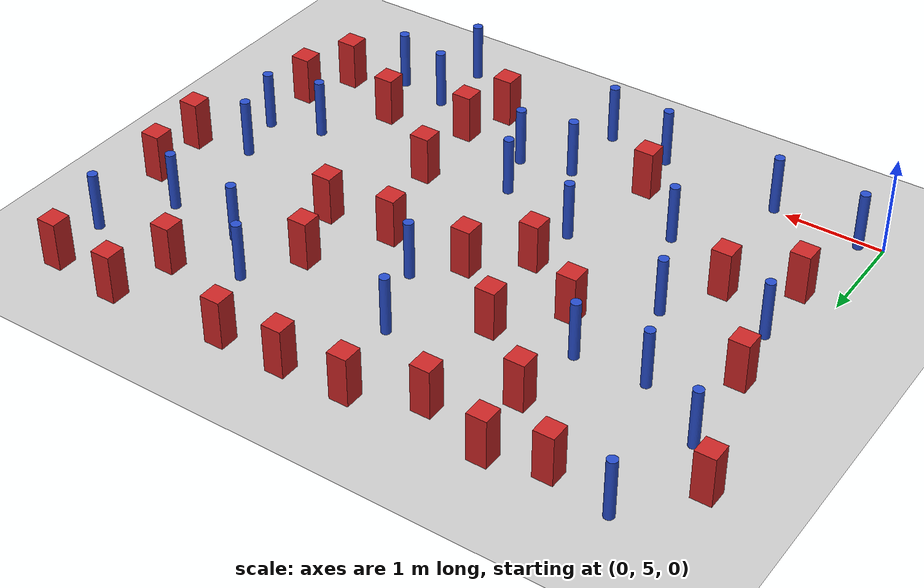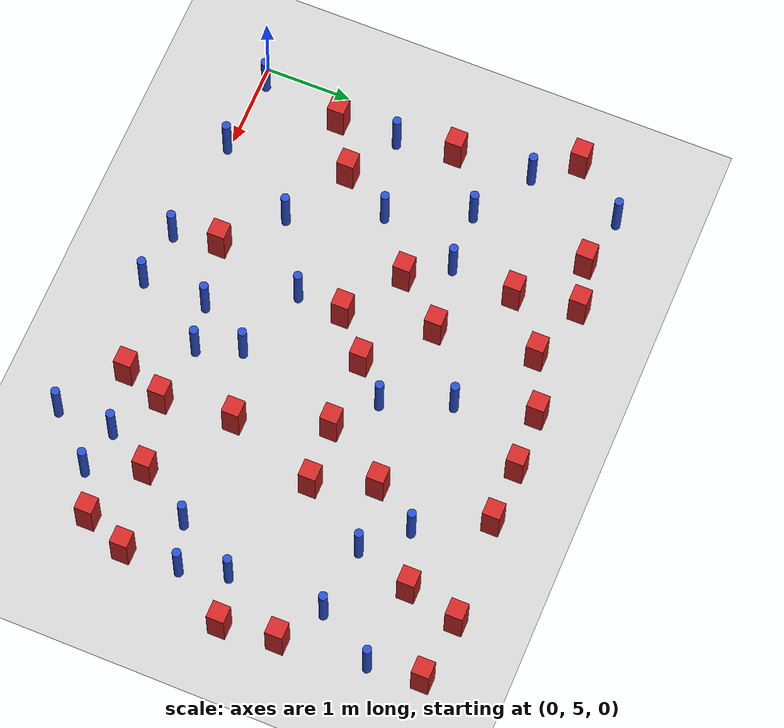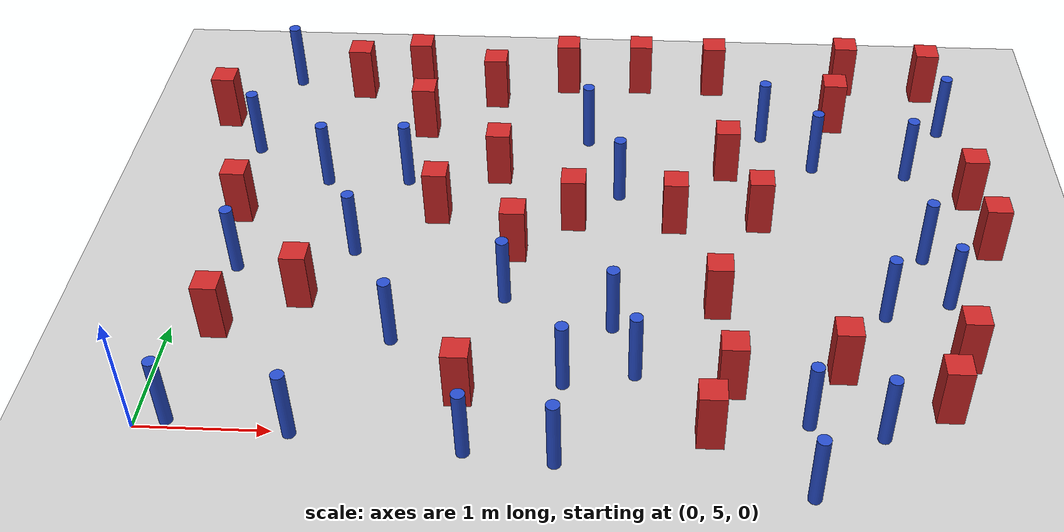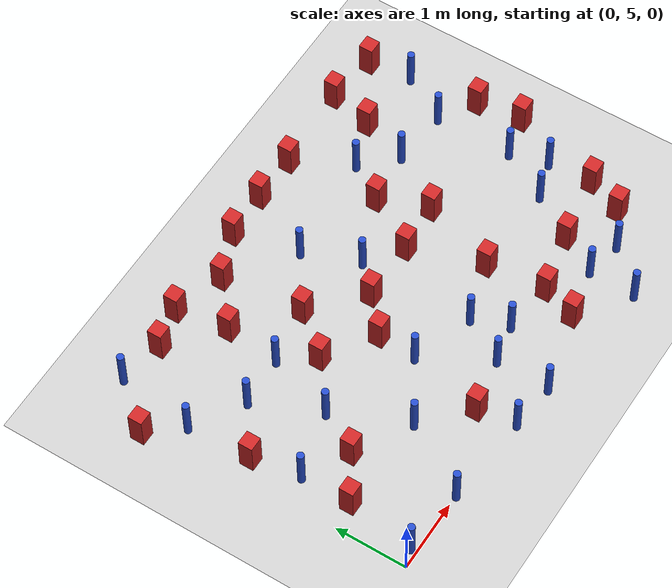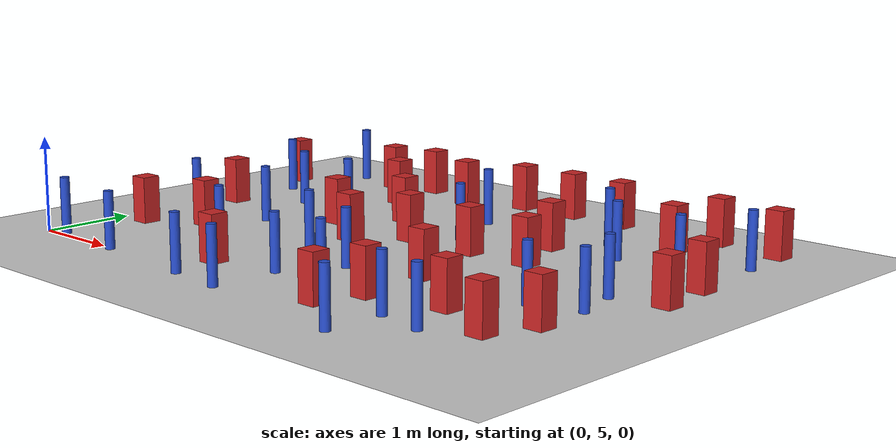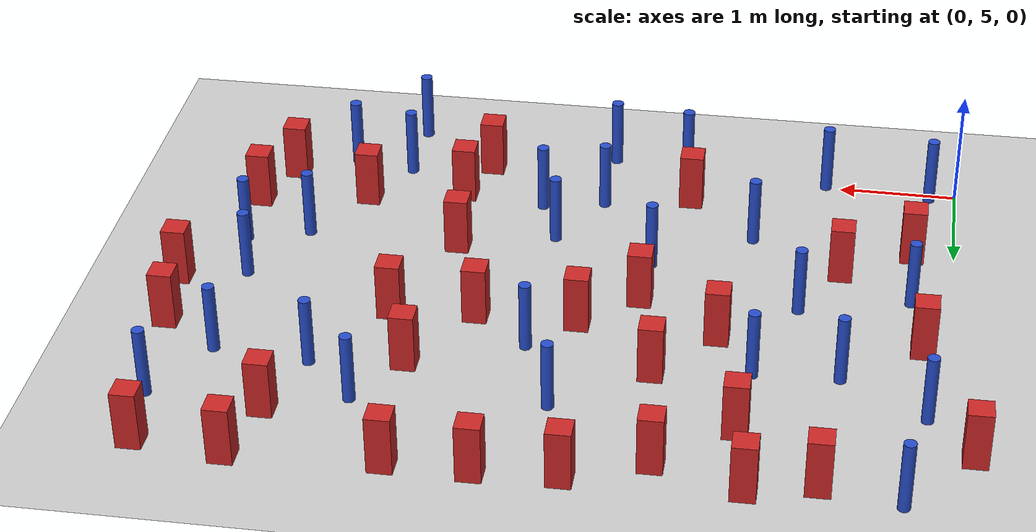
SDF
<sdf version="1.6">
 <world name="default">
  <model name="ground_plane">
   <static>1</static>
   <link name="link">
    <collision name="collision">
     <geometry><plane><normal>0 0 1</normal><size>100 100</size></plane></geometry>
     <surface><friction><ode><mu>100</mu><mu2>50</mu2></ode></friction></surface>
    </collision>
    <visual name="visual">
     <cast_shadows>0</cast_shadows>
     <geometry><plane><normal>0 0 1</normal><size>100 100</size></plane></geometry>
     <material>
      <ambient>1.0 1.0 1.0 1.0</ambient>
      <diffuse>0.8 0.8 0.8 1.0</diffuse>
      <specular>0.01 0.01 0.01 1.000000</specular>
     </material>
    </visual>
   </link>
  </model>
  <model name="square_post_obstacle2">
   <static>true</static>
   <pose>1.88020611518 7.4290270378 8.22691968438e-08 7.2212513382e-06 -7.54495500217e-07 2.29674213826e-05</pose>
   <link name="link">
    <pose>0 0 0.25 0 -0 0</pose>
    <inertial>
     <mass>100</mass>
     <inertia>
      <ixx>0.166667</ixx>
      <ixy>0</ixy>
      <ixz>0</ixz>
      <iyy>0.166667</iyy>
      <iyz>0</iyz>
      <izz>0.166667</izz>
     </inertia>
    </inertial>
    <collision name="collision"><geometry><box><size>.2 .2 .5</size></box></geometry></collision>
    <visual name="visual">
     <geometry><box><size>.2 .2 .5</size></box></geometry>
     <material>
      <script><name>Gazebo/Red</name><uri>file://media/materials/scripts/gazebo.material</uri></script>
     </material>
    </visual>
   </link>
  </model>
  <model name="square_post_obstacle10">
   <static>true</static>
   <pose>4.29482874448 8.11141196569 8.22691968438e-08 7.22125133819e-06 -7.54495500217e-07 2.29674213826e-05</pose>
   <link name="link">
    <pose>0 0 0.25 0 -0 0</pose>
    <inertial>
     <mass>100</mass>
     <inertia>
      <ixx>0.166667</ixx>
      <ixy>0</ixy>
      <ixz>0</ixz>
      <iyy>0.166667</iyy>
      <iyz>0</iyz>
      <izz>0.166667</izz>
     </inertia>
    </inertial>
    <collision name="collision"><geometry><box><size>.2 .2 .5</size></box></geometry></collision>
    <visual name="visual">
     <geometry><box><size>.2 .2 .5</size></box></geometry>
     <material>
      <script><name>Gazebo/Red</name><uri>file://media/materials/scripts/gazebo.material</uri></script>
     </material>
    </visual>
   </link>
  </model>
  <model name="square_post_obstacle11">
   <static>true</static>
   <pose>3.01679938763 7.38728642145 8.22691968438e-08 7.2212513382e-06 -7.54495500217e-07 2.29674213826e-05</pose>
   <link name="link">
    <pose>0 0 0.25 0 -0 0</pose>
    <inertial>
     <mass>100</mass>
     <inertia>
      <ixx>0.166667</ixx>
      <ixy>0</ixy>
      <ixz>0</ixz>
      <iyy>0.166667</iyy>
      <iyz>0</iyz>
      <izz>0.166667</izz>
     </inertia>
    </inertial>
    <collision name="collision"><geometry><box><size>.2 .2 .5</size></box></geometry></collision>
    <visual name="visual">
     <geometry><box><size>.2 .2 .5</size></box></geometry>
     <material>
      <script><name>Gazebo/Red</name><uri>file://media/materials/scripts/gazebo.material</uri></script>
     </material>
    </visual>
   </link>
  </model>
  <model name="pole_obstacle17">
   <static>true</static>
   <pose>5.84731982351 8.12942349117 2.88873142074e-08 -9.9053668967e-09 4.60219948993e-07 -1.20965994957e-07</pose>
   <link name="link">
    <pose>0 0 0.3 0 -0 0</pose>
    <inertial>
     <mass>1</mass>
     <inertia><ixx>0.145833</ixx><ixy>0</ixy><ixz>0</ixz><iyy>0.145833</iyy><iyz>0</iyz><izz>0.125</izz></inertia>
    </inertial>
    <collision name="collision">
     <geometry><cylinder><radius>0.05</radius><length>.6</length></cylinder></geometry>
    </collision>
    <visual name="visual">
     <geometry><cylinder><radius>0.05</radius><length>.6</length></cylinder></geometry>
     <material>
      <script><name>Gazebo/Blue</name><uri>file://media/materials/scripts/gazebo.material</uri></script>
     </material>
    </visual>
   </link>
  </model>
  <model name="square_post_obstacle14">
   <static>true</static>
   <pose>4.54750543136 7.43234947664 8.22691968438e-08 7.2212513382e-06 -7.54495500217e-07 2.29674213826e-05</pose>
   <link name="link">
    <pose>0 0 0.25 0 -0 0</pose>
    <inertial>
     <mass>100</mass>
     <inertia>
      <ixx>0.166667</ixx>
      <ixy>0</ixy>
      <ixz>0</ixz>
      <iyy>0.166667</iyy>
      <iyz>0</iyz>
      <izz>0.166667</izz>
     </inertia>
    </inertial>
    <collision name="collision"><geometry><box><size>.2 .2 .5</size></box></geometry></collision>
    <visual name="visual">
     <geometry><box><size>.2 .2 .5</size></box></geometry>
     <material>
      <script><name>Gazebo/Red</name><uri>file://media/materials/scripts/gazebo.material</uri></script>
     </material>
    </visual>
   </link>
  </model>
  <model name="pole_obstacle19">
   <static>true</static>
   <pose>6.21827679734 8.78030619588 2.88873142074e-08 -9.9053668967e-09 4.60219948993e-07 -1.20965994957e-07</pose>
   <link name="link">
    <pose>0 0 0.3 0 -0 0</pose>
    <inertial>
     <mass>1</mass>
     <inertia><ixx>0.145833</ixx><ixy>0</ixy><ixz>0</ixz><iyy>0.145833</iyy><iyz>0</iyz><izz>0.125</izz></inertia>
    </inertial>
    <collision name="collision">
     <geometry><cylinder><radius>0.05</radius><length>.6</length></cylinder></geometry>
    </collision>
    <visual name="visual">
     <geometry><cylinder><radius>0.05</radius><length>.6</length></cylinder></geometry>
     <material>
      <script><name>Gazebo/Blue</name><uri>file://media/materials/scripts/gazebo.material</uri></script>
     </material>
    </visual>
   </link>
  </model>
  <model name="pole_obstacle26">
   <static>true</static>
   <pose>4.80718190392 5.22176191337 2.88873142074e-08 -9.90536690842e-09 4.60219948965e-07 -1.20965994976e-07</pose>
   <link name="link">
    <pose>0 0 0.3 0 -0 0</pose>
    <inertial>
     <mass>1</mass>
     <inertia><ixx>0.145833</ixx><ixy>0</ixy><ixz>0</ixz><iyy>0.145833</iyy><iyz>0</iyz><izz>0.125</izz></inertia>
    </inertial>
    <collision name="collision">
     <geometry><cylinder><radius>0.05</radius><length>.6</length></cylinder></geometry>
    </collision>
    <visual name="visual">
     <geometry><cylinder><radius>0.05</radius><length>.6</length></cylinder></geometry>
     <material>
      <script><name>Gazebo/Blue</name><uri>file://media/materials/scripts/gazebo.material</uri></script>
     </material>
    </visual>
   </link>
  </model>
  <model name="pole_obstacle27">
   <static>true</static>
   <pose>0.871722174101 7.84950195474 2.88873142074e-08 -9.90536689661e-09 4.60219948993e-07 -1.20965994957e-07</pose>
   <link name="link">
    <pose>0 0 0.3 0 -0 0</pose>
    <inertial>
     <mass>1</mass>
     <inertia><ixx>0.145833</ixx><ixy>0</ixy><ixz>0</ixz><iyy>0.145833</iyy><iyz>0</iyz><izz>0.125</izz></inertia>
    </inertial>
    <collision name="collision">
     <geometry><cylinder><radius>0.05</radius><length>.6</length></cylinder></geometry>
    </collision>
    <visual name="visual">
     <geometry><cylinder><radius>0.05</radius><length>.6</length></cylinder></geometry>
     <material>
      <script><name>Gazebo/Blue</name><uri>file://media/materials/scripts/gazebo.material</uri></script>
     </material>
    </visual>
   </link>
  </model>
  <model name="pole_obstacle28">
   <static>true</static>
   <pose>3.09201147734 8.510328675 2.88873142074e-08 -9.90536692318e-09 4.6021994893e-07 -1.20965994988e-07</pose>
   <link name="link">
    <pose>0 0 0.3 0 -0 0</pose>
    <inertial>
     <mass>1</mass>
     <inertia><ixx>0.145833</ixx><ixy>0</ixy><ixz>0</ixz><iyy>0.145833</iyy><iyz>0</iyz><izz>0.125</izz></inertia>
    </inertial>
    <collision name="collision">
     <geometry><cylinder><radius>0.05</radius><length>.6</length></cylinder></geometry>
    </collision>
    <visual name="visual">
     <geometry><cylinder><radius>0.05</radius><length>.6</length></cylinder></geometry>
     <material>
      <script><name>Gazebo/Blue</name><uri>file://media/materials/scripts/gazebo.material</uri></script>
     </material>
    </visual>
   </link>
  </model>
  <model name="square_post_obstacle19">
   <static>true</static>
   <pose>1.63069952829 8.62874242195 8.22691968438e-08 7.22125133819e-06 -7.54495500217e-07 2.29674213826e-05</pose>
   <link name="link">
    <pose>0 0 0.25 0 -0 0</pose>
    <inertial>
     <mass>100</mass>
     <inertia>
      <ixx>0.166667</ixx>
      <ixy>0</ixy>
      <ixz>0</ixz>
      <iyy>0.166667</iyy>
      <iyz>0</iyz>
      <izz>0.166667</izz>
     </inertia>
    </inertial>
    <collision name="collision"><geometry><box><size>.2 .2 .5</size></box></geometry></collision>
    <visual name="visual">
     <geometry><box><size>.2 .2 .5</size></box></geometry>
     <material>
      <script><name>Gazebo/Red</name><uri>file://media/materials/scripts/gazebo.material</uri></script>
     </material>
    </visual>
   </link>
  </model>
  <model name="pole_obstacle33">
   <static>true</static>
   <pose>3.03195359062 5.54195179076 2.88873142074e-08 -9.90536689859e-09 4.60219948989e-07 -1.20965994961e-07</pose>
   <link name="link">
    <pose>0 0 0.3 0 -0 0</pose>
    <inertial>
     <mass>1</mass>
     <inertia><ixx>0.145833</ixx><ixy>0</ixy><ixz>0</ixz><iyy>0.145833</iyy><iyz>0</iyz><izz>0.125</izz></inertia>
    </inertial>
    <collision name="collision">
     <geometry><cylinder><radius>0.05</radius><length>.6</length></cylinder></geometry>
    </collision>
    <visual name="visual">
     <geometry><cylinder><radius>0.05</radius><length>.6</length></cylinder></geometry>
     <material>
      <script><name>Gazebo/Blue</name><uri>file://media/materials/scripts/gazebo.material</uri></script>
     </material>
    </visual>
   </link>
  </model>
  <model name="pole_obstacle34">
   <static>true</static>
   <pose>3.38530118847 7.7525392408 2.88873142074e-08 -9.90536689859e-09 4.60219948989e-07 -1.20965994961e-07</pose>
   <link name="link">
    <pose>0 0 0.3 0 -0 0</pose>
    <inertial>
     <mass>1</mass>
     <inertia><ixx>0.145833</ixx><ixy>0</ixy><ixz>0</ixz><iyy>0.145833</iyy><iyz>0</iyz><izz>0.125</izz></inertia>
    </inertial>
    <collision name="collision">
     <geometry><cylinder><radius>0.05</radius><length>.6</length></cylinder></geometry>
    </collision>
    <visual name="visual">
     <geometry><cylinder><radius>0.05</radius><length>.6</length></cylinder></geometry>
     <material>
      <script><name>Gazebo/Blue</name><uri>file://media/materials/scripts/gazebo.material</uri></script>
     </material>
    </visual>
   </link>
  </model>
  <model name="pole_obstacle36">
   <static>true</static>
   <pose>3.55911671787 5.6524916783 2.88873142074e-08 -9.90536689859e-09 4.60219948989e-07 -1.20965994961e-07</pose>
   <link name="link">
    <pose>0 0 0.3 0 -0 0</pose>
    <inertial>
     <mass>1</mass>
     <inertia><ixx>0.145833</ixx><ixy>0</ixy><ixz>0</ixz><iyy>0.145833</iyy><iyz>0</iyz><izz>0.125</izz></inertia>
    </inertial>
    <collision name="collision">
     <geometry><cylinder><radius>0.05</radius><length>.6</length></cylinder></geometry>
    </collision>
    <visual name="visual">
     <geometry><cylinder><radius>0.05</radius><length>.6</length></cylinder></geometry>
     <material>
      <script><name>Gazebo/Blue</name><uri>file://media/materials/scripts/gazebo.material</uri></script>
     </material>
    </visual>
   </link>
  </model>
  <model name="pole_obstacle38">
   <static>true</static>
   <pose>0.345372411378 6.71294330075 2.88873142074e-08 -9.90536689683e-09 4.60219948993e-07 -1.20965994957e-07</pose>
   <link name="link">
    <pose>0 0 0.3 0 -0 0</pose>
    <inertial>
     <mass>1</mass>
     <inertia><ixx>0.145833</ixx><ixy>0</ixy><ixz>0</ixz><iyy>0.145833</iyy><iyz>0</iyz><izz>0.125</izz></inertia>
    </inertial>
    <collision name="collision">
     <geometry><cylinder><radius>0.05</radius><length>.6</length></cylinder></geometry>
    </collision>
    <visual name="visual">
     <geometry><cylinder><radius>0.05</radius><length>.6</length></cylinder></geometry>
     <material>
      <script><name>Gazebo/Blue</name><uri>file://media/materials/scripts/gazebo.material</uri></script>
     </material>
    </visual>
   </link>
  </model>
  <model name="pole_obstacle40">
   <static>true</static>
   <pose>0.338555735397 9.34684785285 2.88873142074e-08 -9.90536691079e-09 4.6021994896e-07 -1.2096599498e-07</pose>
   <link name="link">
    <pose>0 0 0.3 0 -0 0</pose>
    <inertial>
     <mass>1</mass>
     <inertia><ixx>0.145833</ixx><ixy>0</ixy><ixz>0</ixz><iyy>0.145833</iyy><iyz>0</iyz><izz>0.125</izz></inertia>
    </inertial>
    <collision name="collision">
     <geometry><cylinder><radius>0.05</radius><length>.6</length></cylinder></geometry>
    </collision>
    <visual name="visual">
     <geometry><cylinder><radius>0.05</radius><length>.6</length></cylinder></geometry>
     <material>
      <script><name>Gazebo/Blue</name><uri>file://media/materials/scripts/gazebo.material</uri></script>
     </material>
    </visual>
   </link>
  </model>
  <model name="square_post_obstacle32">
   <static>true</static>
   <pose>5.26134293332 8.86019405828 8.22691968438e-08 7.22125133819e-06 -7.54495500217e-07 2.29674213826e-05</pose>
   <link name="link">
    <pose>0 0 0.25 0 -0 0</pose>
    <inertial>
     <mass>100</mass>
     <inertia>
      <ixx>0.166667</ixx>
      <ixy>0</ixy>
      <ixz>0</ixz>
      <iyy>0.166667</iyy>
      <iyz>0</iyz>
      <izz>0.166667</izz>
     </inertia>
    </inertial>
    <collision name="collision"><geometry><box><size>.2 .2 .5</size></box></geometry></collision>
    <visual name="visual">
     <geometry><box><size>.2 .2 .5</size></box></geometry>
     <material>
      <script><name>Gazebo/Red</name><uri>file://media/materials/scripts/gazebo.material</uri></script>
     </material>
    </visual>
   </link>
  </model>
  <model name="square_post_obstacle43">
   <static>true</static>
   <pose>4.18162429365 6.3829640397 8.22691968438e-08 7.2212513382e-06 -7.54495500217e-07 2.29674213826e-05</pose>
   <link name="link">
    <pose>0 0 0.25 0 -0 0</pose>
    <inertial>
     <mass>100</mass>
     <inertia>
      <ixx>0.166667</ixx>
      <ixy>0</ixy>
      <ixz>0</ixz>
      <iyy>0.166667</iyy>
      <iyz>0</iyz>
      <izz>0.166667</izz>
     </inertia>
    </inertial>
    <collision name="collision"><geometry><box><size>.2 .2 .5</size></box></geometry></collision>
    <visual name="visual">
     <geometry><box><size>.2 .2 .5</size></box></geometry>
     <material>
      <script><name>Gazebo/Red</name><uri>file://media/materials/scripts/gazebo.material</uri></script>
     </material>
    </visual>
   </link>
  </model>
  <model name="pole_obstacle65">
   <static>true</static>
   <pose>1.25671319583 6.9429597633 2.88873142074e-08 -9.90536689852e-09 4.60219948989e-07 -1.2096599496e-07</pose>
   <link name="link">
    <pose>0 0 0.3 0 -0 0</pose>
    <inertial>
     <mass>1</mass>
     <inertia><ixx>0.145833</ixx><ixy>0</ixy><ixz>0</ixz><iyy>0.145833</iyy><iyz>0</iyz><izz>0.125</izz></inertia>
    </inertial>
    <collision name="collision">
     <geometry><cylinder><radius>0.05</radius><length>.6</length></cylinder></geometry>
    </collision>
    <visual name="visual">
     <geometry><cylinder><radius>0.05</radius><length>.6</length></cylinder></geometry>
     <material>
      <script><name>Gazebo/Blue</name><uri>file://media/materials/scripts/gazebo.material</uri></script>
     </material>
    </visual>
   </link>
  </model>
  <model name="pole_obstacle68">
   <static>true</static>
   <pose>1.7041043052 5.93925075666 2.88873142074e-08 -9.90536689852e-09 4.60219948989e-07 -1.2096599496e-07</pose>
   <link name="link">
    <pose>0 0 0.3 0 -0 0</pose>
    <inertial>
     <mass>1</mass>
     <inertia><ixx>0.145833</ixx><ixy>0</ixy><ixz>0</ixz><iyy>0.145833</iyy><iyz>0</iyz><izz>0.125</izz></inertia>
    </inertial>
    <collision name="collision">
     <geometry><cylinder><radius>0.05</radius><length>.6</length></cylinder></geometry>
    </collision>
    <visual name="visual">
     <geometry><cylinder><radius>0.05</radius><length>.6</length></cylinder></geometry>
     <material>
      <script><name>Gazebo/Blue</name><uri>file://media/materials/scripts/gazebo.material</uri></script>
     </material>
    </visual>
   </link>
  </model>
  <model name="square_post_obstacle61">
   <static>true</static>
   <pose>1.51091823263 9.35410405178 8.22691968438e-08 7.22125133819e-06 -7.54495500217e-07 2.29674213826e-05</pose>
   <link name="link">
    <pose>0 0 0.25 0 -0 0</pose>
    <inertial>
     <mass>100</mass>
     <inertia>
      <ixx>0.166667</ixx>
      <ixy>0</ixy>
      <ixz>0</ixz>
      <iyy>0.166667</iyy>
      <iyz>0</iyz>
      <izz>0.166667</izz>
     </inertia>
    </inertial>
    <collision name="collision"><geometry><box><size>.2 .2 .5</size></box></geometry></collision>
    <visual name="visual">
     <geometry><box><size>.2 .2 .5</size></box></geometry>
     <material>
      <script><name>Gazebo/Red</name><uri>file://media/materials/scripts/gazebo.material</uri></script>
     </material>
    </visual>
   </link>
  </model>
  <model name="pole_obstacle75">
   <static>true</static>
   <pose>4.6287977201 8.63436981729 2.88873142074e-08 -9.9053668967e-09 4.60219948993e-07 -1.20965994957e-07</pose>
   <link name="link">
    <pose>0 0 0.3 0 -0 0</pose>
    <inertial>
     <mass>1</mass>
     <inertia><ixx>0.145833</ixx><ixy>0</ixy><ixz>0</ixz><iyy>0.145833</iyy><iyz>0</iyz><izz>0.125</izz></inertia>
    </inertial>
    <collision name="collision">
     <geometry><cylinder><radius>0.05</radius><length>.6</length></cylinder></geometry>
    </collision>
    <visual name="visual">
     <geometry><cylinder><radius>0.05</radius><length>.6</length></cylinder></geometry>
     <material>
      <script><name>Gazebo/Blue</name><uri>file://media/materials/scripts/gazebo.material</uri></script>
     </material>
    </visual>
   </link>
  </model>
  <model name="square_post_obstacle72">
   <static>true</static>
   <pose>5.08679049711 5.73420712113 8.22691968438e-08 7.2212513382e-06 -7.54495500217e-07 2.29674213826e-05</pose>
   <link name="link">
    <pose>0 0 0.25 0 -0 0</pose>
    <inertial>
     <mass>100</mass>
     <inertia>
      <ixx>0.166667</ixx>
      <ixy>0</ixy>
      <ixz>0</ixz>
      <iyy>0.166667</iyy>
      <iyz>0</iyz>
      <izz>0.166667</izz>
     </inertia>
    </inertial>
    <collision name="collision"><geometry><box><size>.2 .2 .5</size></box></geometry></collision>
    <visual name="visual">
     <geometry><box><size>.2 .2 .5</size></box></geometry>
     <material>
      <script><name>Gazebo/Red</name><uri>file://media/materials/scripts/gazebo.material</uri></script>
     </material>
    </visual>
   </link>
  </model>
  <model name="pole_obstacle85">
   <static>true</static>
   <pose>3.37837329261 6.14405832895 2.88873142074e-08 -9.90536689859e-09 4.60219948989e-07 -1.20965994961e-07</pose>
   <link name="link">
    <pose>0 0 0.3 0 -0 0</pose>
    <inertial>
     <mass>1</mass>
     <inertia><ixx>0.145833</ixx><ixy>0</ixy><ixz>0</ixz><iyy>0.145833</iyy><iyz>0</iyz><izz>0.125</izz></inertia>
    </inertial>
    <collision name="collision">
     <geometry><cylinder><radius>0.05</radius><length>.6</length></cylinder></geometry>
    </collision>
    <visual name="visual">
     <geometry><cylinder><radius>0.05</radius><length>.6</length></cylinder></geometry>
     <material>
      <script><name>Gazebo/Blue</name><uri>file://media/materials/scripts/gazebo.material</uri></script>
     </material>
    </visual>
   </link>
  </model>
  <model name="pole_obstacle87">
   <static>true</static>
   <pose>4.79421285368 4.56980662866 2.88873142074e-08 -9.90536690842e-09 4.60219948965e-07 -1.20965994976e-07</pose>
   <link name="link">
    <pose>0 0 0.3 0 -0 0</pose>
    <inertial>
     <mass>1</mass>
     <inertia><ixx>0.145833</ixx><ixy>0</ixy><ixz>0</ixz><iyy>0.145833</iyy><iyz>0</iyz><izz>0.125</izz></inertia>
    </inertial>
    <collision name="collision">
     <geometry><cylinder><radius>0.05</radius><length>.6</length></cylinder></geometry>
    </collision>
    <visual name="visual">
     <geometry><cylinder><radius>0.05</radius><length>.6</length></cylinder></geometry>
     <material>
      <script><name>Gazebo/Blue</name><uri>file://media/materials/scripts/gazebo.material</uri></script>
     </material>
    </visual>
   </link>
  </model>
  <model name="square_post_obstacle79">
   <static>true</static>
   <pose>6.39883494618 7.17023289886 8.22691968438e-08 7.2212513382e-06 -7.54495500217e-07 2.29674213826e-05</pose>
   <link name="link">
    <pose>0 0 0.25 0 -0 0</pose>
    <inertial>
     <mass>100</mass>
     <inertia>
      <ixx>0.166667</ixx>
      <ixy>0</ixy>
      <ixz>0</ixz>
      <iyy>0.166667</iyy>
      <iyz>0</iyz>
      <izz>0.166667</izz>
     </inertia>
    </inertial>
    <collision name="collision"><geometry><box><size>.2 .2 .5</size></box></geometry></collision>
    <visual name="visual">
     <geometry><box><size>.2 .2 .5</size></box></geometry>
     <material>
      <script><name>Gazebo/Red</name><uri>file://media/materials/scripts/gazebo.material</uri></script>
     </material>
    </visual>
   </link>
  </model>
  <model name="square_post_obstacle80">
   <static>true</static>
   <pose>6.32582281031 7.80456345543 8.22691968438e-08 7.2212513382e-06 -7.54495500217e-07 2.29674213826e-05</pose>
   <link name="link">
    <pose>0 0 0.25 0 -0 0</pose>
    <inertial>
     <mass>100</mass>
     <inertia>
      <ixx>0.166667</ixx>
      <ixy>0</ixy>
      <ixz>0</ixz>
      <iyy>0.166667</iyy>
      <iyz>0</iyz>
      <izz>0.166667</izz>
     </inertia>
    </inertial>
    <collision name="collision"><geometry><box><size>.2 .2 .5</size></box></geometry></collision>
    <visual name="visual">
     <geometry><box><size>.2 .2 .5</size></box></geometry>
     <material>
      <script><name>Gazebo/Red</name><uri>file://media/materials/scripts/gazebo.material</uri></script>
     </material>
    </visual>
   </link>
  </model>
  <model name="square_post_obstacle89">
   <static>true</static>
   <pose>6.01735890398 5.88994774195 8.22691968438e-08 7.2212513382e-06 -7.54495500217e-07 2.29674213826e-05</pose>
   <link name="link">
    <pose>0 0 0.25 0 -0 0</pose>
    <inertial>
     <mass>100</mass>
     <inertia>
      <ixx>0.166667</ixx>
      <ixy>0</ixy>
      <ixz>0</ixz>
      <iyy>0.166667</iyy>
      <iyz>0</iyz>
      <izz>0.166667</izz>
     </inertia>
    </inertial>
    <collision name="collision"><geometry><box><size>.2 .2 .5</size></box></geometry></collision>
    <visual name="visual">
     <geometry><box><size>.2 .2 .5</size></box></geometry>
     <material>
      <script><name>Gazebo/Red</name><uri>file://media/materials/scripts/gazebo.material</uri></script>
     </material>
    </visual>
   </link>
  </model>
  <model name="square_post_obstacle90">
   <static>true</static>
   <pose>0.968969788933 9.22281343465 8.22691968438e-08 7.22125133819e-06 -7.54495500217e-07 2.29674213826e-05</pose>
   <link name="link">
    <pose>0 0 0.25 0 -0 0</pose>
    <inertial>
     <mass>100</mass>
     <inertia>
      <ixx>0.166667</ixx>
      <ixy>0</ixy>
      <ixz>0</ixz>
      <iyy>0.166667</iyy>
      <iyz>0</iyz>
      <izz>0.166667</izz>
     </inertia>
    </inertial>
    <collision name="collision"><geometry><box><size>.2 .2 .5</size></box></geometry></collision>
    <visual name="visual">
     <geometry><box><size>.2 .2 .5</size></box></geometry>
     <material>
      <script><name>Gazebo/Red</name><uri>file://media/materials/scripts/gazebo.material</uri></script>
     </material>
    </visual>
   </link>
  </model>
  <model name="pole_obstacle102">
   <static>true</static>
   <pose>0.226496929471 5.07071774801 2.88873142074e-08 -9.90536689491e-09 4.60219948997e-07 -1.20965994955e-07</pose>
   <link name="link">
    <pose>0 0 0.3 0 -0 0</pose>
    <inertial>
     <mass>1</mass>
     <inertia><ixx>0.145833</ixx><ixy>0</ixy><ixz>0</ixz><iyy>0.145833</iyy><iyz>0</iyz><izz>0.125</izz></inertia>
    </inertial>
    <collision name="collision">
     <geometry><cylinder><radius>0.05</radius><length>.6</length></cylinder></geometry>
    </collision>
    <visual name="visual">
     <geometry><cylinder><radius>0.05</radius><length>.6</length></cylinder></geometry>
     <material>
      <script><name>Gazebo/Blue</name><uri>file://media/materials/scripts/gazebo.material</uri></script>
     </material>
    </visual>
   </link>
  </model>
  <model name="pole_obstacle107">
   <static>true</static>
   <pose>2.37489595555 4.86440754764 2.88873142074e-08 -9.90536689859e-09 4.60219948989e-07 -1.20965994961e-07</pose>
   <link name="link">
    <pose>0 0 0.3 0 -0 0</pose>
    <inertial>
     <mass>1</mass>
     <inertia><ixx>0.145833</ixx><ixy>0</ixy><ixz>0</ixz><iyy>0.145833</iyy><iyz>0</iyz><izz>0.125</izz></inertia>
    </inertial>
    <collision name="collision">
     <geometry><cylinder><radius>0.05</radius><length>.6</length></cylinder></geometry>
    </collision>
    <visual name="visual">
     <geometry><cylinder><radius>0.05</radius><length>.6</length></cylinder></geometry>
     <material>
      <script><name>Gazebo/Blue</name><uri>file://media/materials/scripts/gazebo.material</uri></script>
     </material>
    </visual>
   </link>
  </model>
  <model name="square_post_obstacle106">
   <static>true</static>
   <pose>2.28705705804 5.39459746559 8.22691968438e-08 7.2212513382e-06 -7.54495500217e-07 2.29674213826e-05</pose>
   <link name="link">
    <pose>0 0 0.25 0 -0 0</pose>
    <inertial>
     <mass>100</mass>
     <inertia>
      <ixx>0.166667</ixx>
      <ixy>0</ixy>
      <ixz>0</ixz>
      <iyy>0.166667</iyy>
      <iyz>0</iyz>
      <izz>0.166667</izz>
     </inertia>
    </inertial>
    <collision name="collision"><geometry><box><size>.2 .2 .5</size></box></geometry></collision>
    <visual name="visual">
     <geometry><box><size>.2 .2 .5</size></box></geometry>
     <material>
      <script><name>Gazebo/Red</name><uri>file://media/materials/scripts/gazebo.material</uri></script>
     </material>
    </visual>
   </link>
  </model>
  <model name="square_post_obstacle120">
   <static>true</static>
   <pose>4.20551393075 9.40559191897 8.22691968438e-08 7.22125133819e-06 -7.54495500217e-07 2.29674213826e-05</pose>
   <link name="link">
    <pose>0 0 0.25 0 -0 0</pose>
    <inertial>
     <mass>100</mass>
     <inertia>
      <ixx>0.166667</ixx>
      <ixy>0</ixy>
      <ixz>0</ixz>
      <iyy>0.166667</iyy>
      <iyz>0</iyz>
      <izz>0.166667</izz>
     </inertia>
    </inertial>
    <collision name="collision"><geometry><box><size>.2 .2 .5</size></box></geometry></collision>
    <visual name="visual">
     <geometry><box><size>.2 .2 .5</size></box></geometry>
     <material>
      <script><name>Gazebo/Red</name><uri>file://media/materials/scripts/gazebo.material</uri></script>
     </material>
    </visual>
   </link>
  </model>
  <model name="pole_obstacle127">
   <static>true</static>
   <pose>5.47817961581 6.3531723554 2.88873142074e-08 -9.90536690842e-09 4.60219948965e-07 -1.20965994976e-07</pose>
   <link name="link">
    <pose>0 0 0.3 0 -0 0</pose>
    <inertial>
     <mass>1</mass>
     <inertia><ixx>0.145833</ixx><ixy>0</ixy><ixz>0</ixz><iyy>0.145833</iyy><iyz>0</iyz><izz>0.125</izz></inertia>
    </inertial>
    <collision name="collision">
     <geometry><cylinder><radius>0.05</radius><length>.6</length></cylinder></geometry>
    </collision>
    <visual name="visual">
     <geometry><cylinder><radius>0.05</radius><length>.6</length></cylinder></geometry>
     <material>
      <script><name>Gazebo/Blue</name><uri>file://media/materials/scripts/gazebo.material</uri></script>
     </material>
    </visual>
   </link>
  </model>
  <model name="pole_obstacle131">
   <static>true</static>
   <pose>1.56429559158 7.880516411 2.88873142074e-08 -9.90536689852e-09 4.60219948989e-07 -1.2096599496e-07</pose>
   <link name="link">
    <pose>0 0 0.3 0 -0 0</pose>
    <inertial>
     <mass>1</mass>
     <inertia><ixx>0.145833</ixx><ixy>0</ixy><ixz>0</ixz><iyy>0.145833</iyy><iyz>0</iyz><izz>0.125</izz></inertia>
    </inertial>
    <collision name="collision">
     <geometry><cylinder><radius>0.05</radius><length>.6</length></cylinder></geometry>
    </collision>
    <visual name="visual">
     <geometry><cylinder><radius>0.05</radius><length>.6</length></cylinder></geometry>
     <material>
      <script><name>Gazebo/Blue</name><uri>file://media/materials/scripts/gazebo.material</uri></script>
     </material>
    </visual>
   </link>
  </model>
  <model name="square_post_obstacle130">
   <static>true</static>
   <pose>0.354605396178 6.01160404115 8.22691968438e-08 7.22125133819e-06 -7.54495500217e-07 2.29674213826e-05</pose>
   <link name="link">
    <pose>0 0 0.25 0 -0 0</pose>
    <inertial>
     <mass>100</mass>
     <inertia>
      <ixx>0.166667</ixx>
      <ixy>0</ixy>
      <ixz>0</ixz>
      <iyy>0.166667</iyy>
      <iyz>0</iyz>
      <izz>0.166667</izz>
     </inertia>
    </inertial>
    <collision name="collision"><geometry><box><size>.2 .2 .5</size></box></geometry></collision>
    <visual name="visual">
     <geometry><box><size>.2 .2 .5</size></box></geometry>
     <material>
      <script><name>Gazebo/Red</name><uri>file://media/materials/scripts/gazebo.material</uri></script>
     </material>
    </visual>
   </link>
  </model>
  <model name="pole_obstacle138">
   <static>true</static>
   <pose>3.01794356888 4.79457096138 2.88873142074e-08 -9.90536689859e-09 4.60219948989e-07 -1.20965994961e-07</pose>
   <link name="link">
    <pose>0 0 0.3 0 -0 0</pose>
    <inertial>
     <mass>1</mass>
     <inertia><ixx>0.145833</ixx><ixy>0</ixy><ixz>0</ixz><iyy>0.145833</iyy><iyz>0</iyz><izz>0.125</izz></inertia>
    </inertial>
    <collision name="collision">
     <geometry><cylinder><radius>0.05</radius><length>.6</length></cylinder></geometry>
    </collision>
    <visual name="visual">
     <geometry><cylinder><radius>0.05</radius><length>.6</length></cylinder></geometry>
     <material>
      <script><name>Gazebo/Blue</name><uri>file://media/materials/scripts/gazebo.material</uri></script>
     </material>
    </visual>
   </link>
  </model>
  <model name="pole_obstacle140">
   <static>true</static>
   <pose>5.32663790734 5.12329068119 2.88873142074e-08 -9.90536690842e-09 4.60219948965e-07 -1.20965994976e-07</pose>
   <link name="link">
    <pose>0 0 0.3 0 -0 0</pose>
    <inertial>
     <mass>1</mass>
     <inertia><ixx>0.145833</ixx><ixy>0</ixy><ixz>0</ixz><iyy>0.145833</iyy><iyz>0</iyz><izz>0.125</izz></inertia>
    </inertial>
    <collision name="collision">
     <geometry><cylinder><radius>0.05</radius><length>.6</length></cylinder></geometry>
    </collision>
    <visual name="visual">
     <geometry><cylinder><radius>0.05</radius><length>.6</length></cylinder></geometry>
     <material>
      <script><name>Gazebo/Blue</name><uri>file://media/materials/scripts/gazebo.material</uri></script>
     </material>
    </visual>
   </link>
  </model>
  <model name="square_post_obstacle137">
   <static>true</static>
   <pose>4.26370910991 5.55286729627 8.22691968438e-08 7.2212513382e-06 -7.54495500217e-07 2.29674213826e-05</pose>
   <link name="link">
    <pose>0 0 0.25 0 -0 0</pose>
    <inertial>
     <mass>100</mass>
     <inertia>
      <ixx>0.166667</ixx>
      <ixy>0</ixy>
      <ixz>0</ixz>
      <iyy>0.166667</iyy>
      <iyz>0</iyz>
      <izz>0.166667</izz>
     </inertia>
    </inertial>
    <collision name="collision"><geometry><box><size>.2 .2 .5</size></box></geometry></collision>
    <visual name="visual">
     <geometry><box><size>.2 .2 .5</size></box></geometry>
     <material>
      <script><name>Gazebo/Red</name><uri>file://media/materials/scripts/gazebo.material</uri></script>
     </material>
    </visual>
   </link>
  </model>
  <model name="pole_obstacle142">
   <static>true</static>
   <pose>1.13023970192 4.98433044242 2.88873142074e-08 -9.90536689852e-09 4.60219948989e-07 -1.2096599496e-07</pose>
   <link name="link">
    <pose>0 0 0.3 0 -0 0</pose>
    <inertial>
     <mass>1</mass>
     <inertia><ixx>0.145833</ixx><ixy>0</ixy><ixz>0</ixz><iyy>0.145833</iyy><iyz>0</iyz><izz>0.125</izz></inertia>
    </inertial>
    <collision name="collision">
     <geometry><cylinder><radius>0.05</radius><length>.6</length></cylinder></geometry>
    </collision>
    <visual name="visual">
     <geometry><cylinder><radius>0.05</radius><length>.6</length></cylinder></geometry>
     <material>
      <script><name>Gazebo/Blue</name><uri>file://media/materials/scripts/gazebo.material</uri></script>
     </material>
    </visual>
   </link>
  </model>
  <model name="pole_obstacle143">
   <static>true</static>
   <pose>0.185196098066 8.27492616823 2.88873142074e-08 -9.90536690875e-09 4.60219948965e-07 -1.20965994978e-07</pose>
   <link name="link">
    <pose>0 0 0.3 0 -0 0</pose>
    <inertial>
     <mass>1</mass>
     <inertia><ixx>0.145833</ixx><ixy>0</ixy><ixz>0</ixz><iyy>0.145833</iyy><iyz>0</iyz><izz>0.125</izz></inertia>
    </inertial>
    <collision name="collision">
     <geometry><cylinder><radius>0.05</radius><length>.6</length></cylinder></geometry>
    </collision>
    <visual name="visual">
     <geometry><cylinder><radius>0.05</radius><length>.6</length></cylinder></geometry>
     <material>
      <script><name>Gazebo/Blue</name><uri>file://media/materials/scripts/gazebo.material</uri></script>
     </material>
    </visual>
   </link>
  </model>
  <model name="square_post_obstacle146">
   <static>true</static>
   <pose>4.09564553597 5.07621244769 8.22691968438e-08 7.2212513382e-06 -7.54495500217e-07 2.29674213826e-05</pose>
   <link name="link">
    <pose>0 0 0.25 0 -0 0</pose>
    <inertial>
     <mass>100</mass>
     <inertia>
      <ixx>0.166667</ixx>
      <ixy>0</ixy>
      <ixz>0</ixz>
      <iyy>0.166667</iyy>
      <iyz>0</iyz>
      <izz>0.166667</izz>
     </inertia>
    </inertial>
    <collision name="collision"><geometry><box><size>.2 .2 .5</size></box></geometry></collision>
    <visual name="visual">
     <geometry><box><size>.2 .2 .5</size></box></geometry>
     <material>
      <script><name>Gazebo/Red</name><uri>file://media/materials/scripts/gazebo.material</uri></script>
     </material>
    </visual>
   </link>
  </model>
  <model name="square_post_obstacle148">
   <static>true</static>
   <pose>-0.17640628008 8.71971217401 8.22691968438e-08 7.22125133819e-06 -7.54495500217e-07 2.29674213826e-05</pose>
   <link name="link">
    <pose>0 0 0.25 0 -0 0</pose>
    <inertial>
     <mass>100</mass>
     <inertia>
      <ixx>0.166667</ixx>
      <ixy>0</ixy>
      <ixz>0</ixz>
      <iyy>0.166667</iyy>
      <iyz>0</iyz>
      <izz>0.166667</izz>
     </inertia>
    </inertial>
    <collision name="collision"><geometry><box><size>.2 .2 .5</size></box></geometry></collision>
    <visual name="visual">
     <geometry><box><size>.2 .2 .5</size></box></geometry>
     <material>
      <script><name>Gazebo/Red</name><uri>file://media/materials/scripts/gazebo.material</uri></script>
     </material>
    </visual>
   </link>
  </model>
  <model name="square_post_obstacle149">
   <static>true</static>
   <pose>5.81038677562 5.38766887892 8.22691968438e-08 7.2212513382e-06 -7.54495500217e-07 2.29674213826e-05</pose>
   <link name="link">
    <pose>0 0 0.25 0 -0 0</pose>
    <inertial>
     <mass>100</mass>
     <inertia>
      <ixx>0.166667</ixx>
      <ixy>0</ixy>
      <ixz>0</ixz>
      <iyy>0.166667</iyy>
      <iyz>0</iyz>
      <izz>0.166667</izz>
     </inertia>
    </inertial>
    <collision name="collision"><geometry><box><size>.2 .2 .5</size></box></geometry></collision>
    <visual name="visual">
     <geometry><box><size>.2 .2 .5</size></box></geometry>
     <material>
      <script><name>Gazebo/Red</name><uri>file://media/materials/scripts/gazebo.material</uri></script>
     </material>
    </visual>
   </link>
  </model>
  <model name="pole_obstacle170">
   <static>true</static>
   <pose>2.52456821254 6.43744557983 2.88873142074e-08 -9.90536689859e-09 4.60219948989e-07 -1.20965994961e-07</pose>
   <link name="link">
    <pose>0 0 0.3 0 -0 0</pose>
    <inertial>
     <mass>1</mass>
     <inertia><ixx>0.145833</ixx><ixy>0</ixy><ixz>0</ixz><iyy>0.145833</iyy><iyz>0</iyz><izz>0.125</izz></inertia>
    </inertial>
    <collision name="collision">
     <geometry><cylinder><radius>0.05</radius><length>.6</length></cylinder></geometry>
    </collision>
    <visual name="visual">
     <geometry><cylinder><radius>0.05</radius><length>.6</length></cylinder></geometry>
     <material>
      <script><name>Gazebo/Blue</name><uri>file://media/materials/scripts/gazebo.material</uri></script>
     </material>
    </visual>
   </link>
  </model>
  <model name="square_post_obstacle174">
   <static>true</static>
   <pose>0.235048989431 7.38083653092 8.22691968438e-08 7.2212513382e-06 -7.54495500217e-07 2.29674213826e-05</pose>
   <link name="link">
    <pose>0 0 0.25 0 -0 0</pose>
    <inertial>
     <mass>100</mass>
     <inertia>
      <ixx>0.166667</ixx>
      <ixy>0</ixy>
      <ixz>0</ixz>
      <iyy>0.166667</iyy>
      <iyz>0</iyz>
      <izz>0.166667</izz>
     </inertia>
    </inertial>
    <collision name="collision"><geometry><box><size>.2 .2 .5</size></box></geometry></collision>
    <visual name="visual">
     <geometry><box><size>.2 .2 .5</size></box></geometry>
     <material>
      <script><name>Gazebo/Red</name><uri>file://media/materials/scripts/gazebo.material</uri></script>
     </material>
    </visual>
   </link>
  </model>
  <model name="pole_obstacle177">
   <static>true</static>
   <pose>5.8529108217 7.03887112302 2.88873142074e-08 -9.90536690842e-09 4.60219948965e-07 -1.20965994976e-07</pose>
   <link name="link">
    <pose>0 0 0.3 0 -0 0</pose>
    <inertial>
     <mass>1</mass>
     <inertia><ixx>0.145833</ixx><ixy>0</ixy><ixz>0</ixz><iyy>0.145833</iyy><iyz>0</iyz><izz>0.125</izz></inertia>
    </inertial>
    <collision name="collision">
     <geometry><cylinder><radius>0.05</radius><length>.6</length></cylinder></geometry>
    </collision>
    <visual name="visual">
     <geometry><cylinder><radius>0.05</radius><length>.6</length></cylinder></geometry>
     <material>
      <script><name>Gazebo/Blue</name><uri>file://media/materials/scripts/gazebo.material</uri></script>
     </material>
    </visual>
   </link>
  </model>
  <model name="square_post_obstacle176">
   <static>true</static>
   <pose>3.53489156459 9.41243426828 8.22691968438e-08 7.22125133819e-06 -7.54495500217e-07 2.29674213826e-05</pose>
   <link name="link">
    <pose>0 0 0.25 0 -0 0</pose>
    <inertial>
     <mass>100</mass>
     <inertia>
      <ixx>0.166667</ixx>
      <ixy>0</ixy>
      <ixz>0</ixz>
      <iyy>0.166667</iyy>
      <iyz>0</iyz>
      <izz>0.166667</izz>
     </inertia>
    </inertial>
    <collision name="collision"><geometry><box><size>.2 .2 .5</size></box></geometry></collision>
    <visual name="visual">
     <geometry><box><size>.2 .2 .5</size></box></geometry>
     <material>
      <script><name>Gazebo/Red</name><uri>file://media/materials/scripts/gazebo.material</uri></script>
     </material>
    </visual>
   </link>
  </model>
  <model name="square_post_obstacle187">
   <static>true</static>
   <pose>2.86776576604 9.38613790572 8.22691968438e-08 7.22125133819e-06 -7.54495500217e-07 2.29674213826e-05</pose>
   <link name="link">
    <pose>0 0 0.25 0 -0 0</pose>
    <inertial>
     <mass>100</mass>
     <inertia>
      <ixx>0.166667</ixx>
      <ixy>0</ixy>
      <ixz>0</ixz>
      <iyy>0.166667</iyy>
      <iyz>0</iyz>
      <izz>0.166667</izz>
     </inertia>
    </inertial>
    <collision name="collision"><geometry><box><size>.2 .2 .5</size></box></geometry></collision>
    <visual name="visual">
     <geometry><box><size>.2 .2 .5</size></box></geometry>
     <material>
      <script><name>Gazebo/Red</name><uri>file://media/materials/scripts/gazebo.material</uri></script>
     </material>
    </visual>
   </link>
  </model>
  <model name="square_post_obstacle195">
   <static>true</static>
   <pose>2.55482422161 6.97858527897 8.22691968438e-08 7.2212513382e-06 -7.54495500217e-07 2.29674213826e-05</pose>
   <link name="link">
    <pose>0 0 0.25 0 -0 0</pose>
    <inertial>
     <mass>100</mass>
     <inertia>
      <ixx>0.166667</ixx>
      <ixy>0</ixy>
      <ixz>0</ixz>
      <iyy>0.166667</iyy>
      <iyz>0</iyz>
      <izz>0.166667</izz>
     </inertia>
    </inertial>
    <collision name="collision"><geometry><box><size>.2 .2 .5</size></box></geometry></collision>
    <visual name="visual">
     <geometry><box><size>.2 .2 .5</size></box></geometry>
     <material>
      <script><name>Gazebo/Red</name><uri>file://media/materials/scripts/gazebo.material</uri></script>
     </material>
    </visual>
   </link>
  </model>
  <model name="square_post_obstacle197">
   <static>true</static>
   <pose>3.85083806531 7.38721133411 8.22691968438e-08 7.2212513382e-06 -7.54495500217e-07 2.29674213826e-05</pose>
   <link name="link">
    <pose>0 0 0.25 0 -0 0</pose>
    <inertial>
     <mass>100</mass>
     <inertia>
      <ixx>0.166667</ixx>
      <ixy>0</ixy>
      <ixz>0</ixz>
      <iyy>0.166667</iyy>
      <iyz>0</iyz>
      <izz>0.166667</izz>
     </inertia>
    </inertial>
    <collision name="collision"><geometry><box><size>.2 .2 .5</size></box></geometry></collision>
    <visual name="visual">
     <geometry><box><size>.2 .2 .5</size></box></geometry>
     <material>
      <script><name>Gazebo/Red</name><uri>file://media/materials/scripts/gazebo.material</uri></script>
     </material>
    </visual>
   </link>
  </model>
  <model name="square_post_obstacle198">
   <static>true</static>
   <pose>2.21993715609 9.12619109054 8.22691968438e-08 7.22125133819e-06 -7.54495500217e-07 2.29674213826e-05</pose>
   <link name="link">
    <pose>0 0 0.25 0 -0 0</pose>
    <inertial>
     <mass>100</mass>
     <inertia>
      <ixx>0.166667</ixx>
      <ixy>0</ixy>
      <ixz>0</ixz>
      <iyy>0.166667</iyy>
      <iyz>0</iyz>
      <izz>0.166667</izz>
     </inertia>
    </inertial>
    <collision name="collision"><geometry><box><size>.2 .2 .5</size></box></geometry></collision>
    <visual name="visual">
     <geometry><box><size>.2 .2 .5</size></box></geometry>
     <material>
      <script><name>Gazebo/Red</name><uri>file://media/materials/scripts/gazebo.material</uri></script>
     </material>
    </visual>
   </link>
  </model>
  <model name="square_post_obstacle203">
   <static>true</static>
   <pose>0.939872378719 6.37004646688 8.22691968438e-08 7.2212513382e-06 -7.54495500217e-07 2.29674213826e-05</pose>
   <link name="link">
    <pose>0 0 0.25 0 -0 0</pose>
    <inertial>
     <mass>100</mass>
     <inertia>
      <ixx>0.166667</ixx>
      <ixy>0</ixy>
      <ixz>0</ixz>
      <iyy>0.166667</iyy>
      <iyz>0</iyz>
      <izz>0.166667</izz>
     </inertia>
    </inertial>
    <collision name="collision"><geometry><box><size>.2 .2 .5</size></box></geometry></collision>
    <visual name="visual">
     <geometry><box><size>.2 .2 .5</size></box></geometry>
     <material>
      <script><name>Gazebo/Red</name><uri>file://media/materials/scripts/gazebo.material</uri></script>
     </material>
    </visual>
   </link>
  </model>
  <model name="pole_obstacle206">
   <static>true</static>
   <pose>5.99223723047 6.51816721804 2.88873142074e-08 -9.90536690842e-09 4.60219948965e-07 -1.20965994976e-07</pose>
   <link name="link">
    <pose>0 0 0.3 0 -0 0</pose>
    <inertial>
     <mass>1</mass>
     <inertia><ixx>0.145833</ixx><ixy>0</ixy><ixz>0</ixz><iyy>0.145833</iyy><iyz>0</iyz><izz>0.125</izz></inertia>
    </inertial>
    <collision name="collision">
     <geometry><cylinder><radius>0.05</radius><length>.6</length></cylinder></geometry>
    </collision>
    <visual name="visual">
     <geometry><cylinder><radius>0.05</radius><length>.6</length></cylinder></geometry>
     <material>
      <script><name>Gazebo/Blue</name><uri>file://media/materials/scripts/gazebo.material</uri></script>
     </material>
    </visual>
   </link>
  </model>
  <model name="square_post_obstacle208">
   <static>true</static>
   <pose>2.34858478308 7.98962298216 8.22691968438e-08 7.22125133819e-06 -7.54495500217e-07 2.29674213826e-05</pose>
   <link name="link">
    <pose>0 0 0.25 0 -0 0</pose>
    <inertial>
     <mass>100</mass>
     <inertia>
      <ixx>0.166667</ixx>
      <ixy>0</ixy>
      <ixz>0</ixz>
      <iyy>0.166667</iyy>
      <iyz>0</iyz>
      <izz>0.166667</izz>
     </inertia>
    </inertial>
    <collision name="collision"><geometry><box><size>.2 .2 .5</size></box></geometry></collision>
    <visual name="visual">
     <geometry><box><size>.2 .2 .5</size></box></geometry>
     <material>
      <script><name>Gazebo/Red</name><uri>file://media/materials/scripts/gazebo.material</uri></script>
     </material>
    </visual>
   </link>
  </model>
  <model name="pole_obstacle215">
   <static>true</static>
   <pose>5.05334429619 8.20364424344 2.88873142074e-08 -9.9053668967e-09 4.60219948993e-07 -1.20965994957e-07</pose>
   <link name="link">
    <pose>0 0 0.3 0 -0 0</pose>
    <inertial>
     <mass>1</mass>
     <inertia><ixx>0.145833</ixx><ixy>0</ixy><ixz>0</ixz><iyy>0.145833</iyy><iyz>0</iyz><izz>0.125</izz></inertia>
    </inertial>
    <collision name="collision">
     <geometry><cylinder><radius>0.05</radius><length>.6</length></cylinder></geometry>
    </collision>
    <visual name="visual">
     <geometry><cylinder><radius>0.05</radius><length>.6</length></cylinder></geometry>
     <material>
      <script><name>Gazebo/Blue</name><uri>file://media/materials/scripts/gazebo.material</uri></script>
     </material>
    </visual>
   </link>
  </model>
  <model name="square_post_obstacle215">
   <static>true</static>
   <pose>6.14127003262 9.38147996466 8.22691968438e-08 7.22125133819e-06 -7.54495500217e-07 2.29674213826e-05</pose>
   <link name="link">
    <pose>0 0 0.25 0 -0 0</pose>
    <inertial>
     <mass>100</mass>
     <inertia>
      <ixx>0.166667</ixx>
      <ixy>0</ixy>
      <ixz>0</ixz>
      <iyy>0.166667</iyy>
      <iyz>0</iyz>
      <izz>0.166667</izz>
     </inertia>
    </inertial>
    <collision name="collision"><geometry><box><size>.2 .2 .5</size></box></geometry></collision>
    <visual name="visual">
     <geometry><box><size>.2 .2 .5</size></box></geometry>
     <material>
      <script><name>Gazebo/Red</name><uri>file://media/materials/scripts/gazebo.material</uri></script>
     </material>
    </visual>
   </link>
  </model>
  <model name="square_post_obstacle217">
   <static>true</static>
   <pose>5.40930003262 9.46517996466 8.22691968438e-08 7.22125133819e-06 -7.54495500217e-07 2.29674213826e-05</pose>
   <link name="link">
    <pose>0 0 0.25 0 -0 0</pose>
    <inertial>
     <mass>100</mass>
     <inertia>
      <ixx>0.166667</ixx>
      <ixy>0</ixy>
      <ixz>0</ixz>
      <iyy>0.166667</iyy>
      <iyz>0</iyz>
      <izz>0.166667</izz>
     </inertia>
    </inertial>
    <collision name="collision"><geometry><box><size>.2 .2 .5</size></box></geometry></collision>
    <visual name="visual">
     <geometry><box><size>.2 .2 .5</size></box></geometry>
     <material>
      <script><name>Gazebo/Red</name><uri>file://media/materials/scripts/gazebo.material</uri></script>
     </material>
    </visual>
   </link>
  </model>
 </world>
</sdf>
